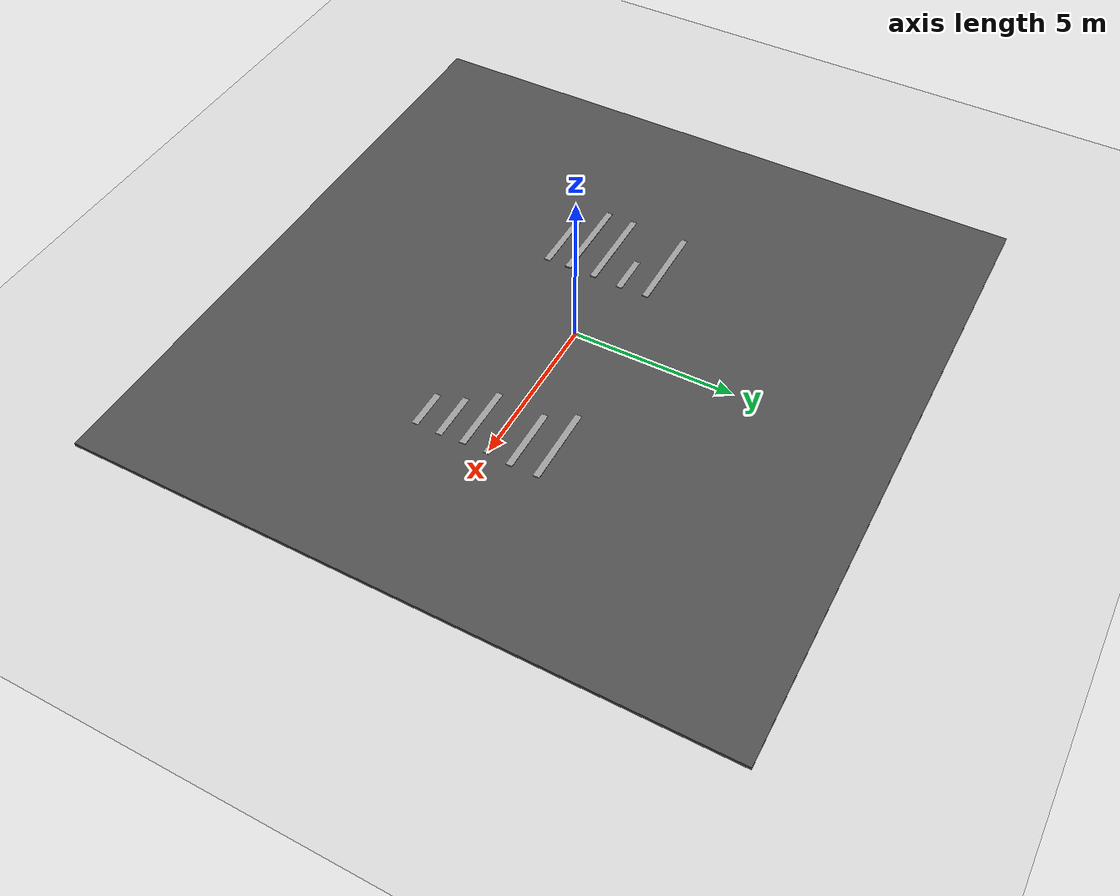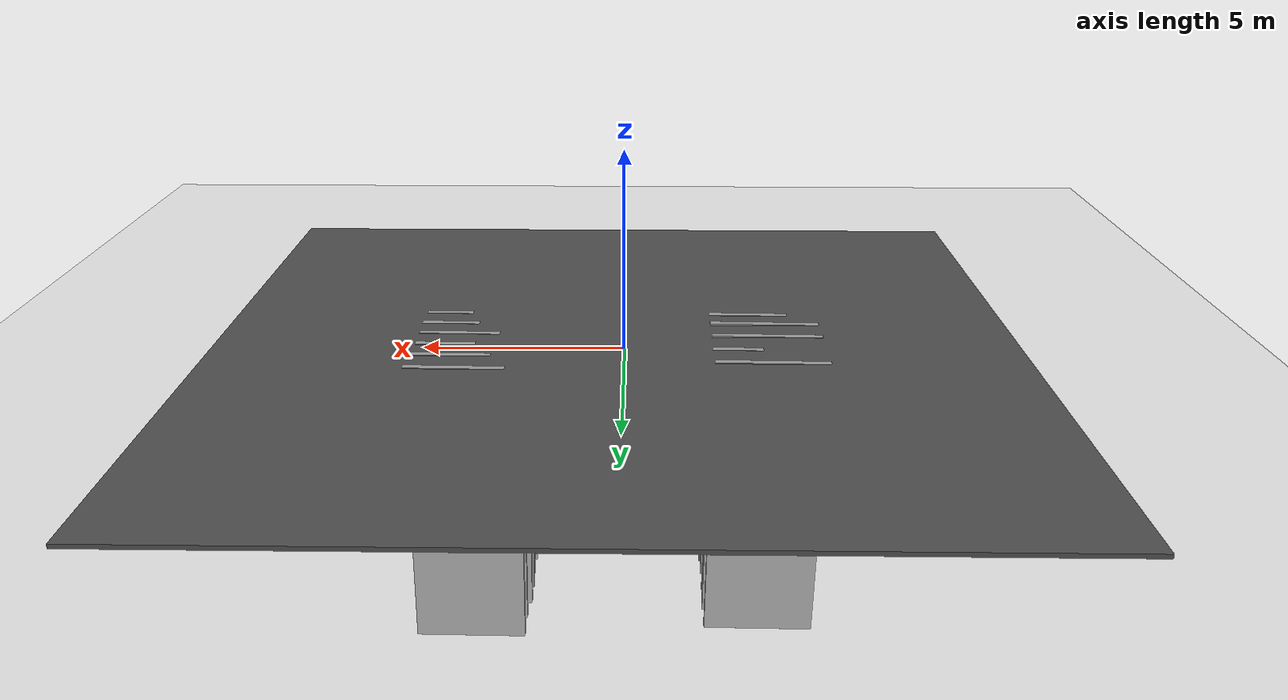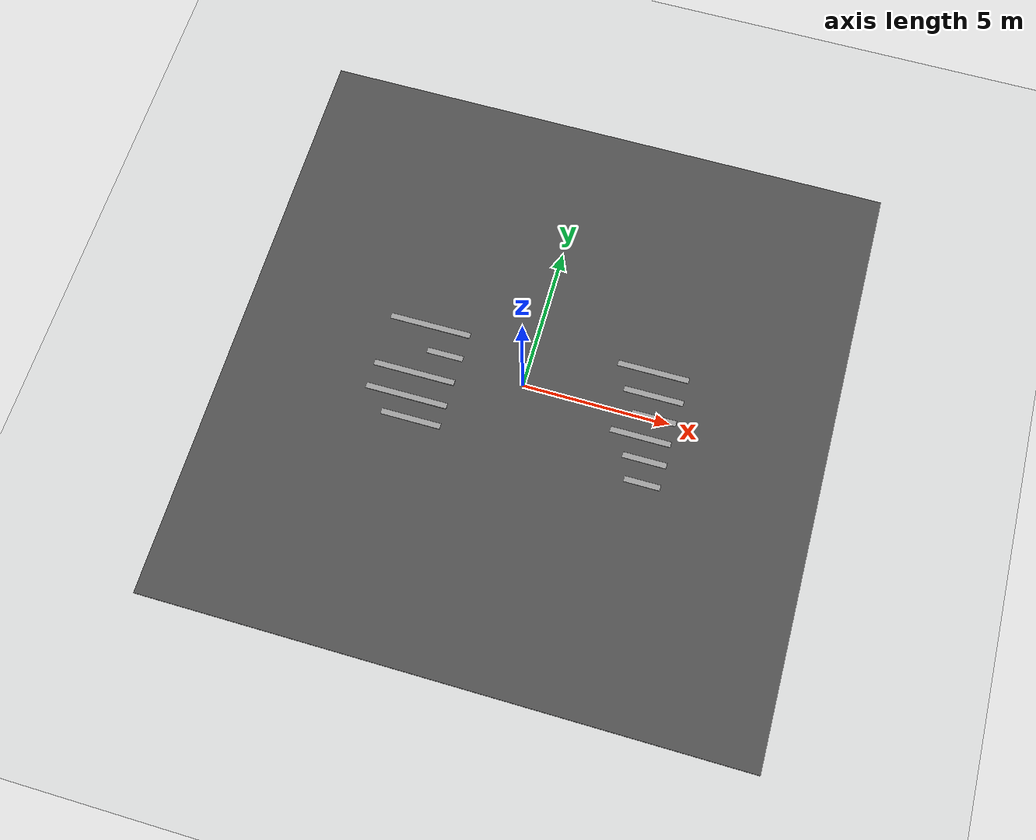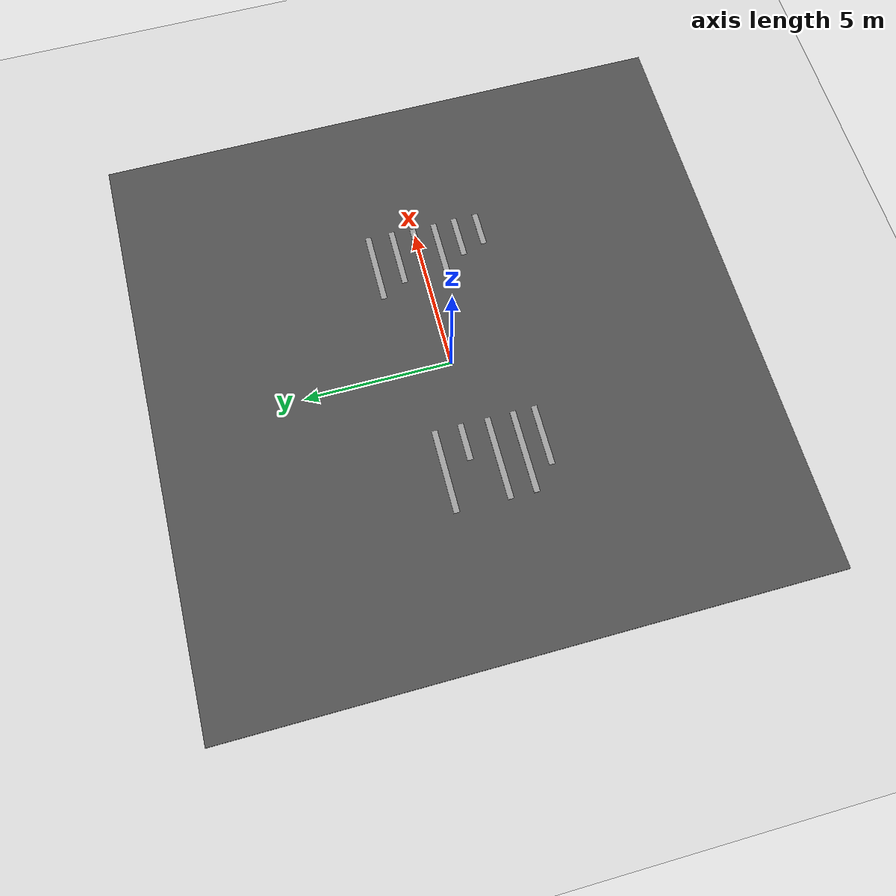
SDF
<sdf version="1.6">
 <world name="default">
  <light name="sun" type="directional">
   <pose>0 0 10 0 -0 0</pose>
   <diffuse>0.8 0.8 0.8 1</diffuse>
   <specular>0.2 0.2 0.2 1</specular>
   <attenuation>
    <range>1000</range>
    <constant>0.9</constant>
    <linear>0.01</linear>
    <quadratic>0.001</quadratic>
   </attenuation>
   <direction>-0.5 0.1 -0.9</direction>
  </light>
  <model name="ground_plane">
   <static>1</static>
   <link name="link">
    <collision name="collision">
     <geometry><plane><normal>0 0 1</normal><size>100 100</size></plane></geometry>
     <surface>
      <contact><collide_bitmask>65535</collide_bitmask></contact>
      <friction><ode><mu>100</mu><mu2>50</mu2></ode></friction>
     </surface>
    </collision>
    <visual name="visual">
     <cast_shadows>0</cast_shadows>
     <geometry><plane><normal>0 0 1</normal><size>100 100</size></plane></geometry>
     <material>
      <script><uri>file://media/materials/scripts/gazebo.material</uri><name>Gazebo/Grey</name></script>
     </material>
    </visual>
   </link>
  </model>
  <gravity>0 0 -9.8</gravity>
  <magnetic_field>6e-06 2.3e-05 -4.2e-05</magnetic_field>
  <atmosphere type="adiabatic"/>
  <physics name="default_physics" default="0" type="ode">
   <max_step_size>0.001</max_step_size>
   <real_time_factor>1</real_time_factor>
   <real_time_update_rate>1000</real_time_update_rate>
  </physics>
  <scene><ambient>0.4 0.4 0.4 1</ambient><background>0.7 0.7 0.7 1</background><shadows>1</shadows></scene>
  <audio><device>default</device></audio>
  <spherical_coordinates>
   <surface_model>EARTH_WGS84</surface_model>
   <latitude_deg>0</latitude_deg>
   <longitude_deg>0</longitude_deg>
   <elevation>0</elevation>
   <heading_deg>0</heading_deg>
  </spherical_coordinates>
  <model name="asphalt_plane">
   <static>1</static>
   <link name="link">
    <collision name="collision"><geometry><box><size>20 20 0.1</size></box></geometry></collision>
    <visual name="visual">
     <cast_shadows>0</cast_shadows>
     <geometry><box><size>20 20 0.1</size></box></geometry>
     <material>
      <script>
       <uri>model://asphalt_plane/materials/scripts</uri>
       <uri>model://asphalt_plane/materials/textures</uri>
       <name>vrc/asphalt</name>
      </script>
     </material>
    </visual>
   </link>
   <pose>0.199818 -0.018291 0.093028 0 -0 0</pose>
  </model>
  <model name="grey_wall">
   <static>1</static>
   <link name="link">
    <pose>0 0 1.4 0 -0 0</pose>
    <collision name="collision"><geometry><box><size>7.5 0.2 2.8</size></box></geometry></collision>
    <visual name="visual">
     <cast_shadows>0</cast_shadows>
     <geometry><box><size>7.5 0.2 2.8</size></box></geometry>
     <material>
      <script>
       <uri>model://grey_wall/materials/scripts</uri>
       <uri>model://grey_wall/materials/textures</uri>
       <name>vrc/grey_wall</name>
      </script>
     </material>
    </visual>
   </link>
   <pose>2.46766 -2.22921 -3.62196 0 1.56125 0</pose>
  </model>
  <model name="grey_wall_clone">
   <static>1</static>
   <link name="link">
    <pose>0 0 1.4 0 -0 0</pose>
    <collision name="collision"><geometry><box><size>7.5 0.2 2.8</size></box></geometry></collision>
    <visual name="visual">
     <cast_shadows>0</cast_shadows>
     <geometry><box><size>7.5 0.2 2.8</size></box></geometry>
     <material>
      <script>
       <uri>model://grey_wall/materials/scripts</uri>
       <uri>model://grey_wall/materials/textures</uri>
       <name>vrc/grey_wall</name>
      </script>
     </material>
    </visual>
   </link>
   <pose>2.48463 -1.45503 -3.61943 0 1.56125 0</pose>
  </model>
  <model name="grey_wall_clone_0">
   <static>1</static>
   <link name="link">
    <pose>0 0 1.4 0 -0 0</pose>
    <collision name="collision"><geometry><box><size>7.5 0.2 2.8</size></box></geometry></collision>
    <visual name="visual">
     <cast_shadows>0</cast_shadows>
     <geometry><box><size>7.5 0.2 2.8</size></box></geometry>
     <material>
      <script>
       <uri>model://grey_wall/materials/scripts</uri>
       <uri>model://grey_wall/materials/textures</uri>
       <name>vrc/grey_wall</name>
      </script>
     </material>
    </visual>
   </link>
   <pose>2.45062 -0.714931 -3.61399 0 1.56125 0</pose>
  </model>
  <model name="grey_wall_clone_1">
   <static>1</static>
   <link name="link">
    <pose>0 0 1.4 0 -0 0</pose>
    <collision name="collision"><geometry><box><size>7.5 0.2 2.8</size></box></geometry></collision>
    <visual name="visual">
     <cast_shadows>0</cast_shadows>
     <geometry><box><size>7.5 0.2 2.8</size></box></geometry>
     <material>
      <script>
       <uri>model://grey_wall/materials/scripts</uri>
       <uri>model://grey_wall/materials/textures</uri>
       <name>vrc/grey_wall</name>
      </script>
     </material>
    </visual>
   </link>
   <pose>2.44362 0.036686 -3.61926 0 1.56125 0</pose>
  </model>
  <model name="grey_wall_clone_2">
   <static>1</static>
   <link name="link">
    <pose>0 0 1.4 0 -0 0</pose>
    <collision name="collision"><geometry><box><size>7.5 0.2 2.8</size></box></geometry></collision>
    <visual name="visual">
     <cast_shadows>0</cast_shadows>
     <geometry><box><size>7.5 0.2 2.8</size></box></geometry>
     <material>
      <script>
       <uri>model://grey_wall/materials/scripts</uri>
       <uri>model://grey_wall/materials/textures</uri>
       <name>vrc/grey_wall</name>
      </script>
     </material>
    </visual>
   </link>
   <pose>2.50438 1.61441 -3.61028 0 1.56125 0</pose>
  </model>
  <model name="grey_wall_clone_3">
   <static>1</static>
   <link name="link">
    <pose>0 0 1.4 0 -0 0</pose>
    <collision name="collision"><geometry><box><size>7.5 0.2 2.8</size></box></geometry></collision>
    <visual name="visual">
     <cast_shadows>0</cast_shadows>
     <geometry><box><size>7.5 0.2 2.8</size></box></geometry>
     <material>
      <script>
       <uri>model://grey_wall/materials/scripts</uri>
       <uri>model://grey_wall/materials/textures</uri>
       <name>vrc/grey_wall</name>
      </script>
     </material>
    </visual>
   </link>
   <pose>-4.94314 0.309116 -3.62151 0 1.56125 0</pose>
  </model>
  <model name="grey_wall_clone_4">
   <static>1</static>
   <link name="link">
    <pose>0 0 1.4 0 -0 0</pose>
    <collision name="collision"><geometry><box><size>7.5 0.2 2.8</size></box></geometry></collision>
    <visual name="visual">
     <cast_shadows>0</cast_shadows>
     <geometry><box><size>7.5 0.2 2.8</size></box></geometry>
     <material>
      <script>
       <uri>model://grey_wall/materials/scripts</uri>
       <uri>model://grey_wall/materials/textures</uri>
       <name>vrc/grey_wall</name>
      </script>
     </material>
    </visual>
   </link>
   <pose>-4.95528 1.1795 -3.60432 0 1.56125 0</pose>
  </model>
  <model name="grey_wall_clone_5">
   <static>1</static>
   <link name="link">
    <pose>0 0 1.4 0 -0 0</pose>
    <collision name="collision"><geometry><box><size>7.5 0.2 2.8</size></box></geometry></collision>
    <visual name="visual">
     <cast_shadows>0</cast_shadows>
     <geometry><box><size>7.5 0.2 2.8</size></box></geometry>
     <material>
      <script>
       <uri>model://grey_wall/materials/scripts</uri>
       <uri>model://grey_wall/materials/textures</uri>
       <name>vrc/grey_wall</name>
      </script>
     </material>
    </visual>
   </link>
   <pose>-4.96963 -1.44153 -3.59169 0 1.56125 0</pose>
  </model>
  <model name="grey_wall_clone_6">
   <static>1</static>
   <link name="link">
    <pose>0 0 1.4 0 -0 0</pose>
    <collision name="collision"><geometry><box><size>7.5 0.2 2.8</size></box></geometry></collision>
    <visual name="visual">
     <cast_shadows>0</cast_shadows>
     <geometry><box><size>7.5 0.2 2.8</size></box></geometry>
     <material>
      <script>
       <uri>model://grey_wall/materials/scripts</uri>
       <uri>model://grey_wall/materials/textures</uri>
       <name>vrc/grey_wall</name>
      </script>
     </material>
    </visual>
   </link>
   <pose>-4.96998 -0.585943 -3.59985 0 1.56125 0</pose>
  </model>
  <model name="grey_wall_clone_7">
   <static>1</static>
   <link name="link">
    <pose>0 0 1.4 0 -0 0</pose>
    <collision name="collision"><geometry><box><size>7.5 0.2 2.8</size></box></geometry></collision>
    <visual name="visual">
     <cast_shadows>0</cast_shadows>
     <geometry><box><size>7.5 0.2 2.8</size></box></geometry>
     <material>
      <script>
       <uri>model://grey_wall/materials/scripts</uri>
       <uri>model://grey_wall/materials/textures</uri>
       <name>vrc/grey_wall</name>
      </script>
     </material>
    </visual>
   </link>
   <pose>-4.96725 -2.16675 -3.614 0 1.56125 0</pose>
  </model>
  <model name="grey_wall_clone_8">
   <static>1</static>
   <link name="link">
    <pose>0 0 1.4 0 -0 0</pose>
    <collision name="collision"><geometry><box><size>7.5 0.2 2.8</size></box></geometry></collision>
    <visual name="visual">
     <cast_shadows>0</cast_shadows>
     <geometry><box><size>7.5 0.2 2.8</size></box></geometry>
     <material>
      <script>
       <uri>model://grey_wall/materials/scripts</uri>
       <uri>model://grey_wall/materials/textures</uri>
       <name>vrc/grey_wall</name>
      </script>
     </material>
    </visual>
   </link>
   <pose>2.51223 0.782331 -3.6142 0 1.56125 0</pose>
  </model>
 </world>
</sdf>
